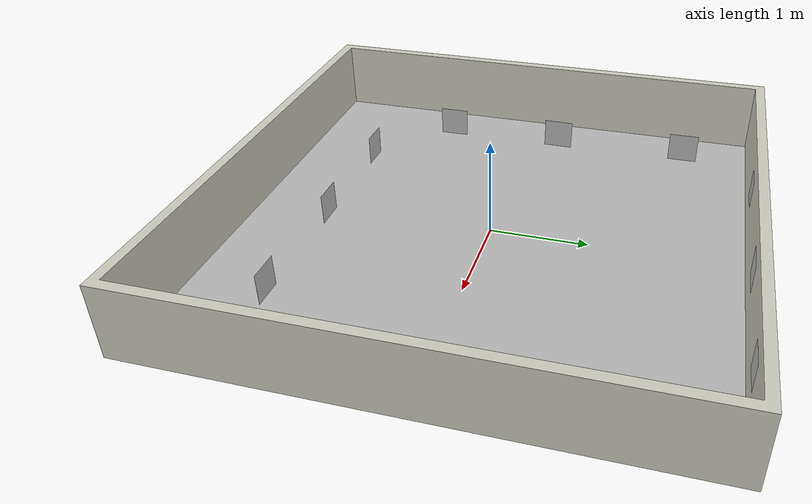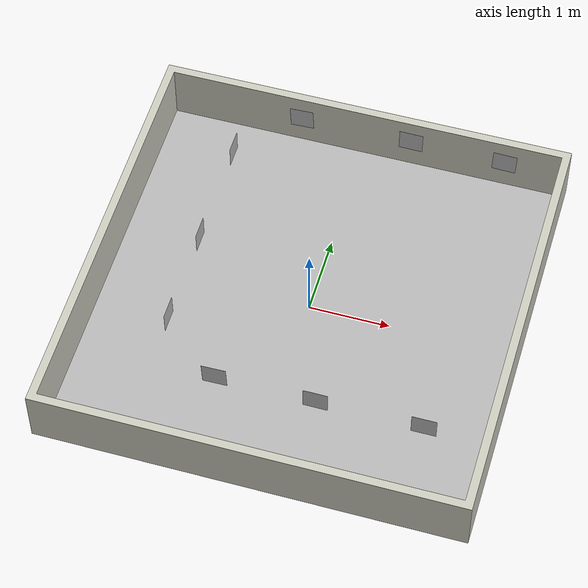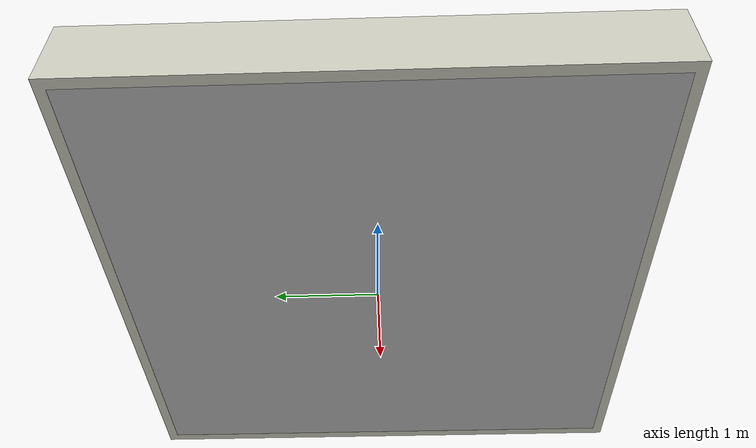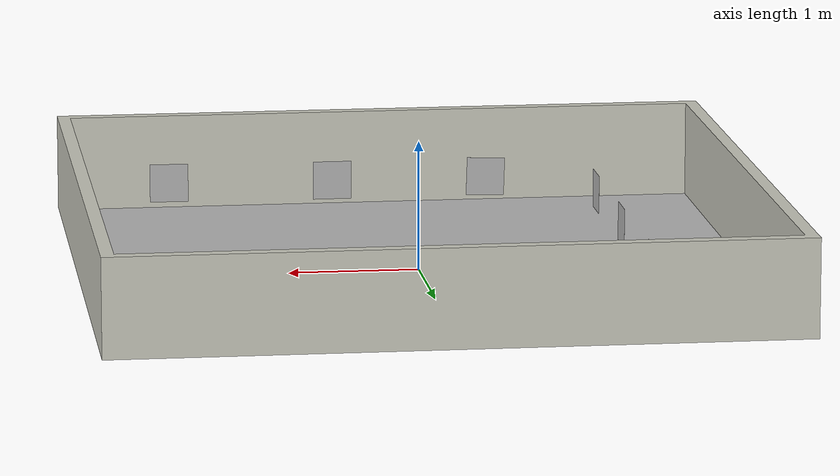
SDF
<sdf version="1.5">
    <model name="arena">
      <static>true</static>
      <link name="link">
        <inertial>
          <mass>1.0</mass>
          <inertia><ixx>0.01</ixx><ixy>0.0</ixy><ixz>0.0</ixz>
            <iyy>0.01</iyy><iyz>0.0</iyz><izz>0.01</izz>
          </inertia>
        </inertial>
        <collision name="collision">
          <geometry>
            <mesh>
              <uri>model://arena_walls/arena.stl</uri>
              <scale>0.001 0.001 0.0005</scale>
            </mesh>
          </geometry>
          <surface>
              <friction>
              <ode>
                <mu>0.1</mu>
                <mu2>0.1</mu2>
              </ode>
              </friction>
          </surface>
        </collision>
        <visual name="visual">
          <geometry>
            <mesh>
              <uri>model://arena_walls/arena.stl</uri>
              <scale>0.001 0.001 0.0005</scale>
            </mesh>
          </geometry>
          <material>
            <script>
              <name>Gazebo/PaintedWall</name>
              <uri>file://media/materials/scripts/gazebo.material</uri>
            </script>
          </material>
        </visual>
        <visual name="tag000">
          <pose>2.499 0.5 0.4 0.03 0 0</pose> <geometry> <box><size>0.00011 0.3 0.3</size></box> </geometry>
          <material> <script> <uri>file://media/materials/scripts/tag.material</uri> <name>tag000</name> </script> </material>
        </visual>
        <visual name="tag001">
          <pose>2.499 1.73 0.4 -0.01 0 0</pose> <geometry> <box><size>0.00011 0.3 0.3</size></box> </geometry>
          <material> <script> <uri>file://media/materials/scripts/tag.material</uri> <name>tag001</name> </script> </material>
        </visual>
        <visual name="tag002">
          <pose>1.8 2.499 0.41 0.03 0 1.5708</pose> <geometry> <box><size>0.00011 0.3 0.3</size></box> </geometry>
          <material> <script> <uri>file://media/materials/scripts/tag.material</uri> <name>tag002</name> </script> </material>
        </visual>
        <visual name="tag003">
          <pose>0.6 2.499 0.42 0.01 0 1.5708</pose> <geometry> <box><size>0.00011 0.3 0.3</size></box> </geometry>
          <material> <script> <uri>file://media/materials/scripts/tag.material</uri> <name>tag003</name> </script> </material>
        </visual>
        <visual name="tag004">
          <pose>-0.82 2.499 0.4 -0.05 0 1.5708</pose> <geometry> <box><size>0.00011 0.3 0.3</size></box> </geometry>
          <material> <script> <uri>file://media/materials/scripts/tag.material</uri> <name>tag004</name> </script> </material>
        </visual>
        <visual name="tag005">
          <pose>-1.5 1.78 0.41 0.0 0 0</pose> <geometry> <box><size>0.00011 0.3 0.3</size></box> </geometry>
          <material> <script> <uri>file://media/materials/scripts/tag.material</uri> <name>tag005</name> </script> </material>
        </visual>
        <visual name="tag006">
          <pose>-1.5 0.4 0.4 -0.01 0 0</pose> <geometry> <box><size>0.00011 0.3 0.3</size></box> </geometry>
          <material> <script> <uri>file://media/materials/scripts/tag.material</uri> <name>tag006</name> </script> </material>
        </visual>
        <visual name="tag007">
          <pose>-1.5 -0.82 0.4 0.002 0 0</pose> <geometry> <box><size>0.00011 0.3 0.3</size></box> </geometry>
          <material> <script> <uri>file://media/materials/scripts/tag.material</uri> <name>tag007</name> </script> </material>
        </visual>
        <visual name="tag008">
          <pose>1.79 -1.5 0.41 0.002 0 -1.5708</pose> <geometry> <box><size>0.00011 0.3 0.3</size></box> </geometry>
          <material> <script> <uri>file://media/materials/scripts/tag.material</uri> <name>tag008</name> </script> </material>
        </visual>
        <visual name="tag009">
          <pose>0.5 -1.5 0.4 -0.001 0 -1.5708</pose> <geometry> <box><size>0.00011 0.3 0.3</size></box> </geometry>
          <material> <script> <uri>file://media/materials/scripts/tag.material</uri> <name>tag009</name> </script> </material>
        </visual>
        <visual name="tag010">
          <pose>-0.72 -1.5 0.4 0.03 0 -1.5708</pose> <geometry> <box><size>0.00011 0.3 0.3</size></box> </geometry>
          <material> <script> <uri>file://media/materials/scripts/tag.material</uri> <name>tag010</name> </script> </material>
        </visual>
        <visual name="tag011">
          <pose>2.499 -0.77 0.392 0.002 0 0</pose> <geometry> <box><size>0.00011 0.3 0.3</size></box> </geometry>
          <material> <script> <uri>file://media/materials/scripts/tag.material</uri> <name>tag011</name> </script> </material>
        </visual>
        <visual name="floor">
          <pose>0 0 0.002 0 0 0</pose>
          <geometry>
            <box>
              <size>5 5 0.001</size>
            </box>
          </geometry>
          <material>
            <script>
              <name>floortile</name>
              <uri>file://media/materials/scripts/floortile.material</uri>
            </script>
          </material>
        </visual>
      </link>
    </model>
</sdf>
